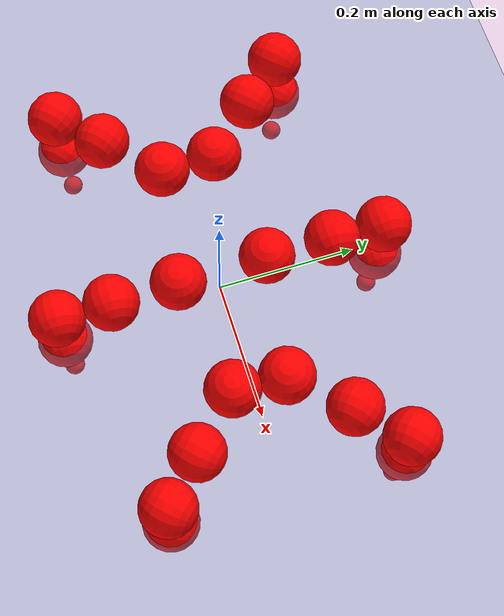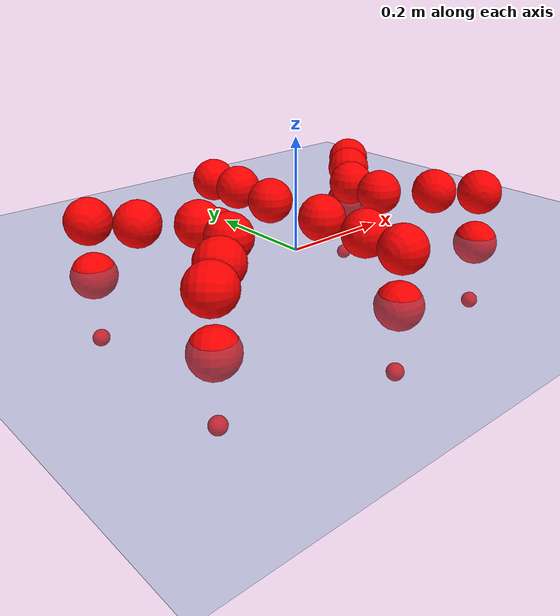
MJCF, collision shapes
<mujoco model="Golem">
  <compiler angle="radian" assetdir="assets" balanceinertia="true" inertiafromgeom="false"/>

  <option timestep="0.005" density="1.2" viscosity="2e-05"/>

  <size nkey="1"/>

  <visual>
    <quality shadowsize="8192"/>
    <map shadowclip="0.5"/>
  </visual>

  <default>
    <default class="/">
      <joint armature="0.01" damping="0.01" frictionloss="0.01"/>
      <geom contype="0" conaffinity="0" group="1" solref="-1000 -80"/>
      <site size="0.01 0.005 0.005" group="5"/>
      <general forcelimited="true" biastype="affine" gainprm="25" biasprm="0 -25 -0.5"/>
      <default class="visual">
        <geom type="mesh" group="2"/>
      </default>
      <default class="collision">
        <geom group="3"/>
      </default>
      <default class="foot">
        <geom size="0.01 0 0" condim="6" group="4" priority="1" solimp="0.015 1 0.01"/>
      </default>
      <default class="reward_collision_sphere">
        <geom group="5" rgba="1 0 0 1"/>
      </default>
    </default>
  </default>

  <asset>
    <texture type="skybox" colorspace="auto" name="//unnamed_texture_0" builtin="gradient" rgb1="0.95 0.95 0.95" rgb2="0.95 0.95 0.95" width="100" height="600"/>
    <texture type="2d" colorspace="auto" name="texplane" builtin="checker" rgb1="0.345 0.575 0.748" rgb2="0.345 0.575 0.748" markrgb="1 1 1" width="512" height="512"/>
    <material name="MatPlane" class="/" texture="texplane" texuniform="true" texrepeat="2 2" specular="0.9"/>
    <mesh name="body" class="/" file="body.stl" scale="0.001 0.001 0.001"/>
    <mesh name="coxa" class="/" file="coxa.stl" scale="0.001 0.001 0.001"/>
    <mesh name="femur" class="/" file="femur.stl" scale="0.001 0.001 0.001"/>
    <mesh name="tibia" class="/" file="tibia.stl" scale="0.001 0.001 0.001"/>
    <mesh name="tarsus" class="/" file="tarsus.stl" scale="0.001 0.001 0.001"/>
  </asset>

  <worldbody>
    <geom name="floor" class="/" size="100 100 0.125" type="plane" group="0" material="MatPlane"/>
    <light name="toplight_shadow" class="/" pos="0 0 5" dir="0.0990148 0.0990148 -0.990148" type="directional" ambient="0.04 0.04 0.04" diffuse="0.55 0.55 0.55" specular="0.12 0.12 0.12"/>
    <light name="toplight_fill" class="/" pos="0 0 5" dir="0.0990148 0.0990148 -0.990148" type="directional" castshadow="false" ambient="0.04 0.04 0.04" diffuse="0.3 0.3 0.3" specular="0.08 0.08 0.08"/>
    <body name="trunk" pos="0.00195998 0.00215193 0.00278541" quat="1 -7.63069e-05 -0.0001357 1.50454e-05">
      <inertial pos="-0.001672 -0.000820481 -0.0028033" quat="0.999986 0.000447474 0.00200524 -0.00485564" mass="3.83935" diaginertia="0.0156186 0.00227058 0.0194059"/>
      <joint name="//unnamed_joint_0" type="free"/>
      <geom name="//unnamed_geom_1" class="/" pos="0 0 0.0728875" quat="1 0 0 0" type="mesh" rgba="0.9 0.9 0.9 1" mesh="body"/>
      <site name="imu" class="/" pos="0.146648 -0.0141731 0.118521" size="0.00991066"/>
      <camera name="track" class="/" pos="0 -1.4801 0" quat="0.707107 0.707107 0 0" mode="trackcom"/>
      <camera name="ego_camera" class="/" pos="0.142256 0 0.113887" quat="-0.5 -0.5 0.5 0.5"/>
      <body name="coxa_RR" pos="-0.193519 -0.0599532 0.0746483" quat="0.383424 0.000733739 -0.000316124 -0.923572">
        <inertial pos="-0.000504301 -0.00151988 0.00192613" quat="0.999914 0.000776152 -0.0126633 -0.00316969" mass="0.201529" diaginertia="0.0156993 0.00217162 0.0192234"/>
        <joint name="coxa_joint_RR" class="/" pos="0 0 0" axis="1.68239e-05 0.000242207 -1" stiffness="0.00790048" range="-3.08408 3.13503" armature="0.0100259" damping="0.00301443" frictionloss="0.0101852"/>
        <geom name="//unnamed_geom_2" class="/" type="mesh" rgba="0.2 0.2 0.2 1" mesh="coxa"/>
        <geom name="//unnamed_geom_3" class="reward_collision_sphere" size="0.0396426" pos="-0.0328284 0 0"/>
        <body name="femur_RR" pos="0.0661956 0.000343114 -0.000524638" quat="0.500057 -0.500828 0.499466 0.499647">
          <inertial pos="-0.00277034 -0.000404719 -0.000581152" quat="0.999999 0.000748045 0.000729541 -0.000240802" mass="0.198375" diaginertia="0.0160022 0.00226982 0.0195752"/>
          <joint name="femur_joint_RR" class="/" pos="0 0 0" axis="0.00439987 0.00382627 -0.999983" stiffness="0.00744889" range="-3.19654 3.19439" armature="0.00843043" damping="0" frictionloss="0.0100564"/>
          <geom name="//unnamed_geom_4" class="/" type="mesh" rgba="0.9 0.9 0.9 1" mesh="femur"/>
          <geom name="//unnamed_geom_5" class="reward_collision_sphere" size="0.0396426"/>
          <body name="tibia_RR" pos="0.00258768 -0.0790039 -0.000420399" quat="7.71782e-05 1 -0.000221276 0.000310455">
            <inertial pos="0.00244688 -0.000275764 0.000460174" quat="0.999909 0.0116633 -0.00304253 0.0060713" mass="0.19427" diaginertia="0.0162711 0.00237051 0.0201165"/>
            <joint name="tibia_joint_RR" class="/" pos="0 0 0" axis="0.00300676 0.0141634 0.999895" range="-3.18918 3.12127" armature="0.00998125" damping="0.0224662" frictionloss="0.00968747"/>
            <geom name="//unnamed_geom_6" class="/" type="mesh" rgba="0.2 0.2 0.2 1" mesh="tibia"/>
            <geom name="//unnamed_geom_7" class="reward_collision_sphere" size="0.0396426"/>
            <body name="tarsus_RR" pos="0.0970087 -0.00173791 -0.00024725" quat="1 4.74205e-05 0.000338222 0.000344491">
              <inertial pos="0.0694675 0.0011939 -0.00259264" quat="0.509779 0.494986 0.500854 0.494226" mass="0.200762" diaginertia="0.0155185 0.00234843 0.019589"/>
              <joint name="tarsus_joint_RR" class="/" pos="0 0 0" axis="-0.00637531 -0.000993928 0.999979" range="-3.10586 3.15001" armature="0.0107777" damping="0.0425872" frictionloss="0.0112065"/>
              <geom name="//unnamed_geom_8" class="/" type="mesh" rgba="0.9 0.9 0.9 1" mesh="tarsus"/>
              <geom name="foot_1" class="foot" size="0.0106334" pos="0.122559 0 0" quat="0 -0.707107 0 0.707107"/>
              <geom name="//unnamed_geom_10" class="reward_collision_sphere" size="0.0396426"/>
              <geom name="//unnamed_geom_11" class="reward_collision_sphere" size="0.014866" pos="0.117635 0 0"/>
              <site name="foot_1" class="foot" pos="0.122559 0 0" quat="0 -0.707107 0 0.707107" size="0.00991066"/>
            </body>
          </body>
        </body>
      </body>
      <body name="coxa_RM" pos="0.000993354 -0.0958076 0.0717391" quat="0.707134 0.000328947 0.000176988 -0.707079">
        <inertial pos="0.000567151 0.00266427 0.00161512" quat="0.999994 0.00224616 -0.000753945 0.00235773" mass="0.189727" diaginertia="0.0158705 0.00226542 0.0193907"/>
        <joint name="coxa_joint_RM" class="/" pos="0 0 0" axis="0.00587341 -0.00459072 -0.999972" range="-3.14416 3.11661" armature="0.00992692" damping="0.0188656" frictionloss="0.00933665"/>
        <geom name="//unnamed_geom_12" class="/" type="mesh" rgba="0.2 0.2 0.2 1" mesh="coxa"/>
        <geom name="//unnamed_geom_13" class="reward_collision_sphere" size="0.0396426" pos="-0.0328284 0 0"/>
        <body name="femur_RM" pos="0.0634665 0.00240269 2.47118e-05" quat="0.500067 -0.500101 0.49987 0.499963">
          <inertial pos="-0.00071623 -0.00291557 0.00276444" quat="0.999996 -0.0025762 0.00098781 0.00095536" mass="0.199599" diaginertia="0.0154583 0.00220307 0.0192567"/>
          <joint name="femur_joint_RM" class="/" pos="0 0 0" axis="0.00105516 -0.00239243 -0.999997" range="-3.12666 3.08691" armature="0.0103972" damping="0" frictionloss="0.0103003"/>
          <geom name="//unnamed_geom_14" class="/" type="mesh" rgba="0.9 0.9 0.9 1" mesh="femur"/>
          <geom name="//unnamed_geom_15" class="reward_collision_sphere" size="0.0396426"/>
          <body name="tibia_RM" pos="0.00332841 -0.0763998 -0.000686961" quat="-1.12525e-05 1 -4.41796e-05 -5.55552e-05">
            <inertial pos="-0.00153748 -0.00189928 0.00177379" quat="0.999973 -0.00314906 -0.00293206 -0.00589343" mass="0.194015" diaginertia="0.0157654 0.00220969 0.0186871"/>
            <joint name="tibia_joint_RM" class="/" pos="0 0 0" axis="5.51325e-05 0.000103413 1" range="-3.15948 3.1895" armature="0.0112588" damping="0.0188632" frictionloss="0.0112782"/>
            <geom name="//unnamed_geom_16" class="/" type="mesh" rgba="0.2 0.2 0.2 1" mesh="tibia"/>
            <geom name="//unnamed_geom_17" class="reward_collision_sphere" size="0.0396426"/>
            <body name="tarsus_RM" pos="0.0935574 -0.00027464 0.00154716" quat="1 7.78526e-05 -2.9669e-05 0.000339952">
              <inertial pos="0.0668455 -0.000845603 0.000455763" quat="0.497998 0.502906 0.497156 0.501916" mass="0.201941" diaginertia="0.016665 0.0023056 0.019823"/>
              <joint name="tarsus_joint_RM" class="/" pos="0 0 0" axis="-0.00225271 -0.000231623 0.999997" range="-3.1369 3.15252" armature="0.0087496" damping="0.0115861" frictionloss="0.00947401"/>
              <geom name="//unnamed_geom_18" class="/" type="mesh" rgba="0.9 0.9 0.9 1" mesh="tarsus"/>
              <geom name="foot_2" class="foot" size="0.00897562" pos="0.122559 0 0" quat="0 -0.707107 0 0.707107"/>
              <geom name="//unnamed_geom_20" class="reward_collision_sphere" size="0.0396426"/>
              <geom name="//unnamed_geom_21" class="reward_collision_sphere" size="0.014866" pos="0.117635 0 0"/>
              <site name="foot_2" class="foot" pos="0.122559 0 0" quat="0 -0.707107 0 0.707107" size="0.00991066"/>
            </body>
          </body>
        </body>
      </body>
      <body name="coxa_RF" pos="0.192514 -0.0598299 0.0738474" quat="0.923872 0.000449864 5.21481e-05 -0.382701">
        <inertial pos="0.00253502 -0.000120254 -0.000446814" quat="0.999994 0.000515639 -0.000396048 -0.00344788" mass="0.195683" diaginertia="0.016132 0.00223851 0.0187299"/>
        <joint name="coxa_joint_RF" class="/" pos="0 0 0" axis="-0.00712036 0.00178958 -0.999973" range="-3.19539 3.15621" armature="0.00856068" damping="0.0150351" frictionloss="0.0104198"/>
        <geom name="//unnamed_geom_22" class="/" type="mesh" rgba="0.2 0.2 0.2 1" mesh="coxa"/>
        <geom name="//unnamed_geom_23" class="reward_collision_sphere" size="0.0396426" pos="-0.0328284 0 0"/>
        <body name="femur_RF" pos="0.0658716 -7.41208e-05 0.0038272" quat="0.499738 -0.500421 0.500522 0.499318">
          <inertial pos="0.00141197 -0.000121845 -0.0025944" quat="0.999986 0.000906143 -0.0025781 0.00458401" mass="0.189554" diaginertia="0.0153875 0.00227295 0.0193789"/>
          <joint name="femur_joint_RF" class="/" pos="0 0 0" axis="0.000931965 0.00202748 -0.999998" range="-3.09211 3.13023" armature="0.0112963" damping="0" frictionloss="0.0108038"/>
          <geom name="//unnamed_geom_24" class="/" type="mesh" rgba="0.9 0.9 0.9 1" mesh="femur"/>
          <geom name="//unnamed_geom_25" class="reward_collision_sphere" size="0.0396426"/>
          <body name="tibia_RF" pos="0.000905933 -0.0810246 0.00160247" quat="9.788e-05 1 -1.59677e-05 5.75659e-05">
            <inertial pos="0.00160134 0.00296643 -0.00104751" quat="0.999985 -0.00364888 -0.00415012 -0.000628457" mass="0.196757" diaginertia="0.0160074 0.00215677 0.0199284"/>
            <joint name="tibia_joint_RF" class="/" pos="0 0 0" axis="-0.00148127 -0.00277057 0.999995" range="-3.15985 3.13302" armature="0.0108979" damping="0.000850756" frictionloss="0.00860497"/>
            <geom name="//unnamed_geom_26" class="/" type="mesh" rgba="0.2 0.2 0.2 1" mesh="tibia"/>
            <geom name="//unnamed_geom_27" class="reward_collision_sphere" size="0.0396426"/>
            <body name="tarsus_RF" pos="0.0971298 0.00108877 -0.000412577" quat="1 0.000723922 0.000572081 0.000150855">
              <inertial pos="0.0643325 -0.00177445 -0.000532751" quat="0.502584 0.501659 0.495228 0.500496" mass="0.190604" diaginertia="0.0162929 0.00221219 0.0194055"/>
              <joint name="tarsus_joint_RF" class="/" pos="0 0 0" axis="-0.00979936 -0.00887527 0.999913" stiffness="0.0109166" range="-3.10418 3.15752" armature="0.0102285" damping="0.00125775" frictionloss="0.0100606"/>
              <geom name="//unnamed_geom_28" class="/" type="mesh" rgba="0.9 0.9 0.9 1" mesh="tarsus"/>
              <geom name="foot_3" class="foot" size="0.00929012" pos="0.122559 0 0" quat="0 -0.707107 0 0.707107"/>
              <geom name="//unnamed_geom_30" class="reward_collision_sphere" size="0.0396426"/>
              <geom name="//unnamed_geom_31" class="reward_collision_sphere" size="0.014866" pos="0.117635 0 0"/>
              <site name="foot_3" class="foot" pos="0.122559 0 0" quat="0 -0.707107 0 0.707107" size="0.00991066"/>
            </body>
          </body>
        </body>
      </body>
      <body name="coxa_LR" pos="-0.194819 0.0642508 0.0751178" quat="0.383435 0.000160421 -0.000667516 0.923568">
        <inertial pos="-0.00108422 -0.00166845 0.00218748" quat="0.999912 -0.00678912 0.00667872 -0.00928331" mass="0.192377" diaginertia="0.0152953 0.00222727 0.0186565"/>
        <joint name="coxa_joint_LR" class="/" pos="0 0 0" axis="0.005373 -0.0141015 -0.999886" range="-3.18543 3.1735" armature="0.00888674" damping="0.0129677" frictionloss="0.0101452"/>
        <geom name="//unnamed_geom_32" class="/" type="mesh" rgba="0.2 0.2 0.2 1" mesh="coxa"/>
        <geom name="//unnamed_geom_33" class="reward_collision_sphere" size="0.0396426" pos="-0.0328284 0 0"/>
        <body name="femur_LR" pos="0.066743 -0.00153837 -0.0023068" quat="0.498928 -0.500979 0.500011 0.500079">
          <inertial pos="0.00160986 0.00054753 0.00022104" quat="0.99996 -0.00553501 0.00600707 -0.0035683" mass="0.1889" diaginertia="0.0155693 0.00222739 0.0195049"/>
          <joint name="femur_joint_LR" class="/" pos="0 0 0" axis="0.0137915 -0.00217012 0.999903" range="-3.11587 3.08559" armature="0.0111443" damping="0" frictionloss="0.0103358"/>
          <geom name="//unnamed_geom_34" class="/" type="mesh" rgba="0.9 0.9 0.9 1" mesh="femur"/>
          <geom name="//unnamed_geom_35" class="reward_collision_sphere" size="0.0396426"/>
          <body name="tibia_LR" pos="-0.00151633 -0.0814504 -0.00333629" quat="-0.00136432 0.999999 -6.80633e-05 4.00265e-05">
            <inertial pos="0.00113523 -0.00126546 0.00276207" quat="0.999904 -0.0107331 -0.00425729 0.00770842" mass="0.193047" diaginertia="0.0161521 0.00227186 0.0191062"/>
            <joint name="tibia_joint_LR" class="/" pos="0 0 0" axis="0.000519271 0.000402558 -1" range="-3.19333 3.19226" armature="0.00866162" damping="0.00989387" frictionloss="0.0113056"/>
            <geom name="//unnamed_geom_36" class="/" type="mesh" rgba="0.2 0.2 0.2 1" mesh="tibia"/>
            <geom name="//unnamed_geom_37" class="reward_collision_sphere" size="0.0396426"/>
            <body name="tarsus_LR" pos="0.0969718 0.000771026 0.00225181" quat="0.999999 0.00059856 0.000962334 -0.000380971">
              <inertial pos="0.0680699 0.000789849 0.000698838" quat="0.509906 0.502493 0.490786 0.496614" mass="0.2015" diaginertia="0.0162103 0.0023111 0.0199194"/>
              <joint name="tarsus_joint_LR" class="/" pos="0 0 0" axis="-0.00643324 -0.00287387 -0.999975" range="-3.18643 3.14026" armature="0.00987367" damping="0.0292793" frictionloss="0.00882514"/>
              <geom name="//unnamed_geom_38" class="/" type="mesh" rgba="0.9 0.9 0.9 1" mesh="tarsus"/>
              <geom name="foot_4" class="foot" size="0.0100628" pos="0.122559 0 0" quat="0.707107 0 -0.707107 0"/>
              <geom name="//unnamed_geom_40" class="reward_collision_sphere" size="0.0396426"/>
              <geom name="//unnamed_geom_41" class="reward_collision_sphere" size="0.014866" pos="0.117635 0 0"/>
              <site name="foot_4" class="foot" pos="0.122559 0 0" quat="0.707107 0 -0.707107 0" size="0.00991066"/>
            </body>
          </body>
        </body>
      </body>
      <body name="coxa_LM" pos="-0.000901841 0.0988918 0.0704306" quat="0.707865 0.000547848 -0.000255181 0.706347">
        <inertial pos="-0.00210063 -0.00123331 -0.00270315" quat="0.999997 0.00178471 -0.00160269 -0.000370556" mass="0.190112" diaginertia="0.0150138 0.00214617 0.019408"/>
        <joint name="coxa_joint_LM" class="/" pos="0 0 0" axis="0.000165682 -0.00276406 -0.999996" range="-3.13685 3.13164" armature="0.0108363" damping="0.0065252" frictionloss="0.00850837"/>
        <geom name="//unnamed_geom_42" class="/" type="mesh" rgba="0.2 0.2 0.2 1" mesh="coxa"/>
        <geom name="//unnamed_geom_43" class="reward_collision_sphere" size="0.0396426" pos="-0.0328284 0 0"/>
        <body name="femur_LM" pos="0.0619547 -0.00182205 0.00211394" quat="0.500098 -0.500389 0.499643 0.499871">
          <inertial pos="0.00285822 0.00231536 0.00206928" quat="1 1.17147e-05 3.04325e-05 -0.00037862" mass="0.194209" diaginertia="0.0161368 0.0022067 0.0186568"/>
          <joint name="femur_joint_LM" class="/" pos="0 0 0" axis="0.0033232 -0.00439319 0.999985" stiffness="0.0033147" range="-3.15642 3.08454" armature="0.0111862" damping="0" frictionloss="0.0113168"/>
          <geom name="//unnamed_geom_44" class="/" type="mesh" rgba="0.9 0.9 0.9 1" mesh="femur"/>
          <geom name="//unnamed_geom_45" class="reward_collision_sphere" size="0.0396426"/>
          <body name="tibia_LM" pos="0.00246328 -0.076384 -0.000340255" quat="-0.000485725 1 0.000308694 -4.40712e-05">
            <inertial pos="-0.00247028 -0.00171968 0.00125662" quat="0.999984 0.00401977 -0.000708285 -0.0038548" mass="0.193486" diaginertia="0.0155705 0.00221727 0.0184446"/>
            <joint name="tibia_joint_LM" class="/" pos="0 0 0" axis="-0.00592405 -0.0114739 -0.999917" range="-3.13371 3.0953" armature="0.0107014" damping="0" frictionloss="0.00965347"/>
            <geom name="//unnamed_geom_46" class="/" type="mesh" rgba="0.2 0.2 0.2 1" mesh="tibia"/>
            <geom name="//unnamed_geom_47" class="reward_collision_sphere" size="0.0396426"/>
            <body name="tarsus_LM" pos="0.097205 -0.00242699 0.00184701" quat="1 0.00041023 -0.000364294 0.000509679">
              <inertial pos="0.0625695 4.06869e-06 -0.00253085" quat="0.505229 0.502491 0.494645 0.497566" mass="0.195728" diaginertia="0.0154225 0.00209226 0.0179987"/>
              <joint name="tarsus_joint_LM" class="/" pos="0 0 0" axis="0.00267437 0.00996947 -0.999947" stiffness="0.00305469" range="-3.12019 3.09308" armature="0.00886418" damping="0.0208249" frictionloss="0.0098108"/>
              <geom name="//unnamed_geom_48" class="/" type="mesh" rgba="0.9 0.9 0.9 1" mesh="tarsus"/>
              <geom name="foot_5" class="foot" size="0.0100776" pos="0.122559 0 0" quat="0.707107 0 -0.707107 0"/>
              <geom name="//unnamed_geom_50" class="reward_collision_sphere" size="0.0396426"/>
              <geom name="//unnamed_geom_51" class="reward_collision_sphere" size="0.014866" pos="0.117635 0 0"/>
              <site name="foot_5" class="foot" pos="0.122559 0 0" quat="0.707107 0 -0.707107 0" size="0.00991066"/>
            </body>
          </body>
        </body>
      </body>
      <body name="coxa_LF" pos="0.196757 0.0614141 0.0742864" quat="0.924104 -0.000668299 0.000338735 0.38214">
        <inertial pos="0.00134993 -0.000467634 0.00196653" quat="0.999984 0.00195572 0.00443052 0.00307664" mass="0.197692" diaginertia="0.0151323 0.00226109 0.0187219"/>
        <joint name="coxa_joint_LF" class="/" pos="0 0 0" axis="0.0129332 -0.00985369 -0.999868" stiffness="0.00658507" range="-3.13654 3.14116" armature="0.00927627" damping="0.00654843" frictionloss="0.00980736"/>
        <geom name="//unnamed_geom_52" class="/" type="mesh" rgba="0.2 0.2 0.2 1" mesh="coxa"/>
        <geom name="//unnamed_geom_53" class="reward_collision_sphere" size="0.0396426" pos="-0.0328284 0 0"/>
        <body name="femur_LF" pos="0.066324 0.00324438 0.0016929" quat="0.500144 -0.500069 0.499981 0.499806">
          <inertial pos="0.00232768 -0.00188999 0.00173411" quat="0.999967 -0.00180321 0.00195762 -0.00772462" mass="0.188767" diaginertia="0.0153648 0.00222154 0.0189311"/>
          <joint name="femur_joint_LF" class="/" pos="0 0 0" axis="-0.00313418 -0.0114165 0.99993" stiffness="0.000139342" range="-3.15005 3.15987" armature="0.0114497" damping="0.00783396" frictionloss="0.00946318"/>
          <geom name="//unnamed_geom_54" class="/" type="mesh" rgba="0.9 0.9 0.9 1" mesh="femur"/>
          <geom name="//unnamed_geom_55" class="reward_collision_sphere" size="0.0396426"/>
          <body name="tibia_LF" pos="0.00178116 -0.083118 -0.000668787" quat="0.00106034 0.999999 -0.000660273 0.000779218">
            <inertial pos="0.000161703 0.0010873 -0.000478749" quat="1 9.21936e-06 -0.000622224 8.12897e-05" mass="0.194338" diaginertia="0.0158866 0.00220647 0.0191965"/>
            <joint name="tibia_joint_LF" class="/" pos="0 0 0" axis="-0.00524166 0.0104739 -0.999931" range="-3.17816 3.19565" armature="0.00892899" damping="0.0101778" frictionloss="0.0105438"/>
            <geom name="//unnamed_geom_56" class="/" type="mesh" rgba="0.2 0.2 0.2 1" mesh="tibia"/>
            <geom name="//unnamed_geom_57" class="reward_collision_sphere" size="0.0396426"/>
            <body name="tarsus_LF" pos="0.0967036 0.00120589 -0.00327298" quat="0.999999 -0.000940035 0.000527844 -0.000109742">
              <inertial pos="0.0634541 0.00246009 -0.000178368" quat="0.498983 0.501528 0.500258 0.499227" mass="0.188588" diaginertia="0.0152099 0.00214667 0.0192496"/>
              <joint name="tarsus_joint_LF" class="/" pos="0 0 0" axis="0.00144956 -0.0149966 -0.999886" stiffness="0.0284728" range="-3.17919 3.17506" armature="0.0100622" damping="0" frictionloss="0.010407"/>
              <geom name="//unnamed_geom_58" class="/" type="mesh" rgba="0.9 0.9 0.9 1" mesh="tarsus"/>
              <geom name="foot_6" class="foot" size="0.0105544" pos="0.122559 0 0" quat="0.707107 0 -0.707107 0"/>
              <geom name="//unnamed_geom_60" class="reward_collision_sphere" size="0.0396426"/>
              <geom name="//unnamed_geom_61" class="reward_collision_sphere" size="0.014866" pos="0.117635 0 0"/>
              <site name="foot_6" class="foot" pos="0.122559 0 0" quat="0.707107 0 -0.707107 0" size="0.00991066"/>
            </body>
          </body>
        </body>
      </body>
    </body>
  </worldbody>

  <contact>
    <pair class="/" geom1="floor" geom2="foot_1" name="//unnamed_contact_0"/>
    <pair class="/" geom1="floor" geom2="foot_2" name="//unnamed_contact_1"/>
    <pair class="/" geom1="floor" geom2="foot_3" name="//unnamed_contact_2"/>
    <pair class="/" geom1="floor" geom2="foot_4" name="//unnamed_contact_3"/>
    <pair class="/" geom1="floor" geom2="foot_5" name="//unnamed_contact_4"/>
    <pair class="/" geom1="floor" geom2="foot_6" name="//unnamed_contact_5"/>
  </contact>

  <actuator>
    <general name="coxa_joint_RR" class="/" joint="coxa_joint_RR" forcerange="-7.82018 7.82018" gainprm="24.2908" biasprm="0 -24.2908 -0.545446"/>
    <general name="femur_joint_RR" class="/" joint="femur_joint_RR" forcerange="-6.53944 6.53944" gainprm="24.2908" biasprm="0 -24.2908 -0.545446"/>
    <general name="tibia_joint_RR" class="/" joint="tibia_joint_RR" forcerange="-6.8014 6.8014" gainprm="24.2908" biasprm="0 -24.2908 -0.545446"/>
    <general name="tarsus_joint_RR" class="/" joint="tarsus_joint_RR" forcerange="-6.46867 6.46867" gainprm="24.2908" biasprm="0 -24.2908 -0.545446"/>
    <general name="coxa_joint_RM" class="/" joint="coxa_joint_RM" forcerange="-7.27982 7.27982" gainprm="24.2908" biasprm="0 -24.2908 -0.545446"/>
    <general name="femur_joint_RM" class="/" joint="femur_joint_RM" forcerange="-6.98792 6.98792" gainprm="24.2908" biasprm="0 -24.2908 -0.545446"/>
    <general name="tibia_joint_RM" class="/" joint="tibia_joint_RM" forcerange="-6.92761 6.92761" gainprm="24.2908" biasprm="0 -24.2908 -0.545446"/>
    <general name="tarsus_joint_RM" class="/" joint="tarsus_joint_RM" forcerange="-6.92566 6.92566" gainprm="24.2908" biasprm="0 -24.2908 -0.545446"/>
    <general name="coxa_joint_RF" class="/" joint="coxa_joint_RF" forcerange="-7.49747 7.49747" gainprm="24.2908" biasprm="0 -24.2908 -0.545446"/>
    <general name="femur_joint_RF" class="/" joint="femur_joint_RF" forcerange="-7.54008 7.54008" gainprm="24.2908" biasprm="0 -24.2908 -0.545446"/>
    <general name="tibia_joint_RF" class="/" joint="tibia_joint_RF" forcerange="-7.93062 7.93062" gainprm="24.2908" biasprm="0 -24.2908 -0.545446"/>
    <general name="tarsus_joint_RF" class="/" joint="tarsus_joint_RF" forcerange="-7.55363 7.55363" gainprm="24.2908" biasprm="0 -24.2908 -0.545446"/>
    <general name="coxa_joint_LR" class="/" joint="coxa_joint_LR" forcerange="-6.55264 6.55264" gainprm="24.2908" biasprm="0 -24.2908 -0.545446"/>
    <general name="femur_joint_LR" class="/" joint="femur_joint_LR" forcerange="-7.73939 7.73939" gainprm="24.2908" biasprm="0 -24.2908 -0.545446"/>
    <general name="tibia_joint_LR" class="/" joint="tibia_joint_LR" forcerange="-7.98962 7.98962" gainprm="24.2908" biasprm="0 -24.2908 -0.545446"/>
    <general name="tarsus_joint_LR" class="/" joint="tarsus_joint_LR" forcerange="-7.1251 7.1251" gainprm="24.2908" biasprm="0 -24.2908 -0.545446"/>
    <general name="coxa_joint_LM" class="/" joint="coxa_joint_LM" forcerange="-7.90378 7.90378" gainprm="24.2908" biasprm="0 -24.2908 -0.545446"/>
    <general name="femur_joint_LM" class="/" joint="femur_joint_LM" forcerange="-7.3108 7.3108" gainprm="24.2908" biasprm="0 -24.2908 -0.545446"/>
    <general name="tibia_joint_LM" class="/" joint="tibia_joint_LM" forcerange="-6.7195 6.7195" gainprm="24.2908" biasprm="0 -24.2908 -0.545446"/>
    <general name="tarsus_joint_LM" class="/" joint="tarsus_joint_LM" forcerange="-6.46904 6.46904" gainprm="24.2908" biasprm="0 -24.2908 -0.545446"/>
    <general name="coxa_joint_LF" class="/" joint="coxa_joint_LF" forcerange="-7.68032 7.68032" gainprm="24.2908" biasprm="0 -24.2908 -0.545446"/>
    <general name="femur_joint_LF" class="/" joint="femur_joint_LF" forcerange="-6.58066 6.58066" gainprm="24.2908" biasprm="0 -24.2908 -0.545446"/>
    <general name="tibia_joint_LF" class="/" joint="tibia_joint_LF" forcerange="-7.18338 7.18338" gainprm="24.2908" biasprm="0 -24.2908 -0.545446"/>
    <general name="tarsus_joint_LF" class="/" joint="tarsus_joint_LF" forcerange="-7.21077 7.21077" gainprm="24.2908" biasprm="0 -24.2908 -0.545446"/>
  </actuator>

  <sensor>
    <gyro site="imu" name="imu_angular_velocity"/>
    <velocimeter site="imu" name="imu_linear_velocity"/>
    <framelinvel objtype="site" objname="foot_1" name="foot_1_global_linear_velocity"/>
    <framelinvel objtype="site" objname="foot_2" name="foot_2_global_linear_velocity"/>
    <framelinvel objtype="site" objname="foot_3" name="foot_3_global_linear_velocity"/>
    <framelinvel objtype="site" objname="foot_4" name="foot_4_global_linear_velocity"/>
    <framelinvel objtype="site" objname="foot_5" name="foot_5_global_linear_velocity"/>
    <framelinvel objtype="site" objname="foot_6" name="foot_6_global_linear_velocity"/>
  </sensor>

  <keyframe>
    <key name="home" qpos="0 0 0.1457 1 0 0 0 0 0 0 0 0 0 0 0 0 0 0 0 0 0 0 0 0 0 0 0 0 0 0 0"/>
  </keyframe>
</mujoco>
